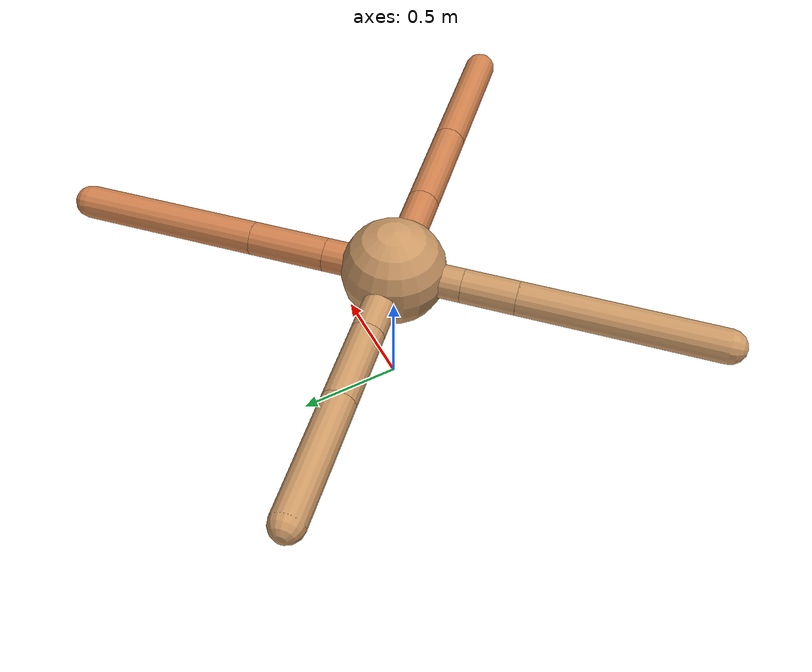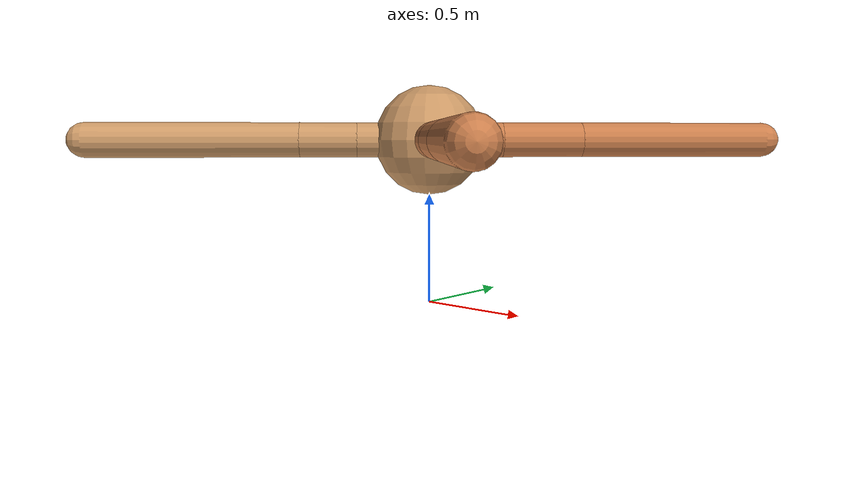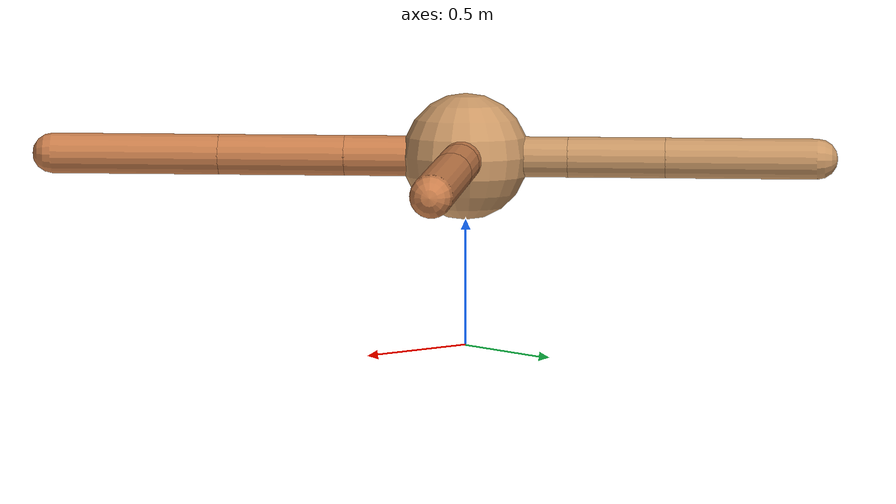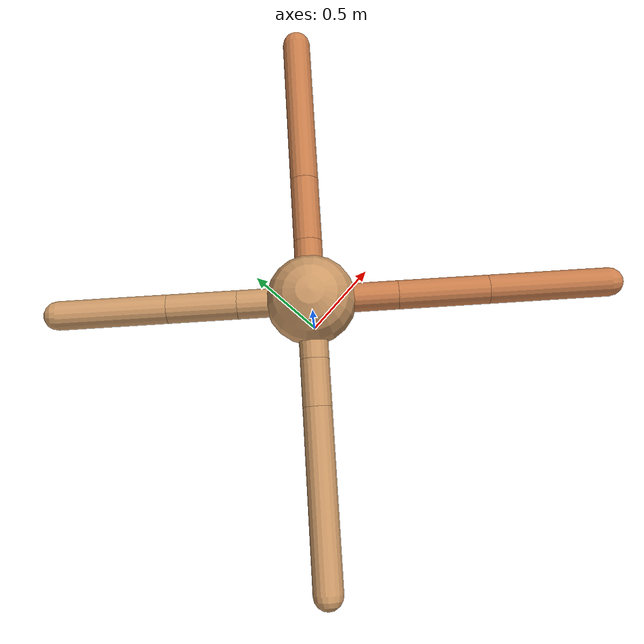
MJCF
<mujoco model="ant">
  <compiler angle="degree" coordinate="local" inertiafromgeom="true" />
  <option integrator="RK4" timestep="0.01" />
  <custom>
    <numeric data="0.0 0.0 0.55 1.0 0.0 0.0 0.0 0.0 1.0 0.0 -1.0 0.0 -1.0 0.0 1.0" name="init_qpos" />
  </custom>
  <default>
    <joint armature="1" damping="1" limited="true" />
    <geom conaffinity="0" condim="3" density="5.0" friction="1.5 0.1 0.1" margin="0.01" rgba="0.8 0.6 0.4 1" />
  </default>
  <worldbody>
    <body name="torso" pos="0 0 0.75">
      <geom name="torso_geom" pos="0 0 0" size="0.25" type="sphere" />

      <body name="front_left_leg" pos="0 0 0">
        <geom fromto="0.0 0.0 0.0 0.23802747288434334 0.23802747288434334 0.0" name="aux_1_geom" size="0.08" type="capsule" rgba=".8 .5 .3 1" />
        <body name="aux_1" pos="0.23802747288434334 0.23802747288434334 0.0">
          <joint axis="0 0 1" name="hip_1" pos="0.0 0.0 0.0" range="-40 40" type="hinge" />
          <geom fromto="0.0 0.0 0.0 0.2602532153664561 0.2602532153664561 0.0" name="left_leg_geom" size="0.08" type="capsule" rgba=".8 .5 .3 1" />
          <body pos="0.2602532153664561 0.2602532153664561 0.0" name="front_left_foot">
            <joint axis="-1 1 0" name="ankle_1" pos="0.0 0.0 0.0" range="30 100" type="hinge" />
            <geom fromto="0.0 0.0 0.0 0.6091259711431511 0.6091259711431511 0.0" name="left_ankle_geom" size="0.08" type="capsule" rgba=".8 .5 .3 1" />
          </body>
        </body>
      </body>
      <body name="front_right_leg" pos="0 0 0">
        <geom fromto="0.0 0.0 0.0 -0.28527198304466583 0.28527198304466583 0.0" name="aux_2_geom" size="0.08" type="capsule" />
        <body name="aux_2" pos="-0.28527198304466583 0.28527198304466583 0.0">
          <joint axis="0 0 1" name="hip_2" pos="0.0 0.0 0.0" range="-40 40" type="hinge" />
          <geom fromto="0.0 0.0 0.0 -0.270982247487641 0.270982247487641 0.0" name="right_leg_geom" size="0.08" type="capsule" />
          <body pos="-0.270982247487641 0.270982247487641 0.0" name="front_right_foot">
            <joint axis="1 1 0" name="ankle_2" pos="0.0 0.0 0.0" range="-100 -30" type="hinge" />
            <geom fromto="0.0 0.0 0.0 -0.4213358027693044 0.4213358027693044 0.0" name="right_ankle_geom" size="0.08" type="capsule" />
          </body>
        </body>
      </body>
      <body name="left_back_leg" pos="0 0 0">
        <geom fromto="0.0 0.0 0.0 -0.23324247463869702 -0.23324247463869702 0.0" name="aux_3_geom" size="0.08" type="capsule" />
        <body name="aux_3" pos="-0.23324247463869702 -0.23324247463869702 0.0">
          <joint axis="0 0 1" name="hip_3" pos="0.0 0.0 0.0" range="-40 40" type="hinge" />
          <geom fromto="0.0 0.0 0.0 -0.18209908464281616 -0.18209908464281616 0.0" name="back_leg_geom" size="0.08" type="capsule" />
          <body pos="-0.18209908464281616 -0.18209908464281616 0.0" name="left_back_foot">
            <joint axis="-1 1 0" name="ankle_3" pos="0.0 0.0 0.0" range="-100 -30" type="hinge" />
            <geom fromto="0.0 0.0 0.0 -0.6696598878656198 -0.6696598878656198 0.0" name="third_ankle_geom" size="0.08" type="capsule" />
          </body>
        </body>
      </body>
      <body name="right_back_leg" pos="0 0 0">
        <geom fromto="0.0 0.0 0.0 0.3385364907850448 -0.3385364907850448 0.0" name="aux_4_geom" size="0.08" type="capsule" rgba=".8 .5 .3 1" />
        <body name="aux_4" pos="0.3385364907850448 -0.3385364907850448 0.0">
          <joint axis="0 0 1" name="hip_4" pos="0.0 0.0 0.0" range="-40 40" type="hinge" />
          <geom fromto="0.0 0.0 0.0 0.35292648293613493 -0.35292648293613493 0.0" name="rightback_leg_geom" size="0.08" type="capsule" rgba=".8 .5 .3 1" />
          <body pos="0.35292648293613493 -0.35292648293613493 0.0" name="right_back_foot">
            <joint axis="1 1 0" name="ankle_4" pos="0.0 0.0 0.0" range="30 100" type="hinge" />
            <geom fromto="0.0 0.0 0.0 0.4718361771497757 -0.4718361771497757 0.0" name="fourth_ankle_geom" size="0.08" type="capsule" rgba=".8 .5 .3 1" />
          </body>
        </body>
      </body>
    </body>
  </worldbody>
  <actuator>
    <motor ctrllimited="true" ctrlrange="-1.0 1.0" joint="hip_4" gear="150" />
    <motor ctrllimited="true" ctrlrange="-1.0 1.0" joint="ankle_4" gear="150" />
    <motor ctrllimited="true" ctrlrange="-1.0 1.0" joint="hip_1" gear="150" />
    <motor ctrllimited="true" ctrlrange="-1.0 1.0" joint="ankle_1" gear="150" />
    <motor ctrllimited="true" ctrlrange="-1.0 1.0" joint="hip_2" gear="150" />
    <motor ctrllimited="true" ctrlrange="-1.0 1.0" joint="ankle_2" gear="150" />
    <motor ctrllimited="true" ctrlrange="-1.0 1.0" joint="hip_3" gear="150" />
    <motor ctrllimited="true" ctrlrange="-1.0 1.0" joint="ankle_3" gear="150" />
  </actuator>
</mujoco>
